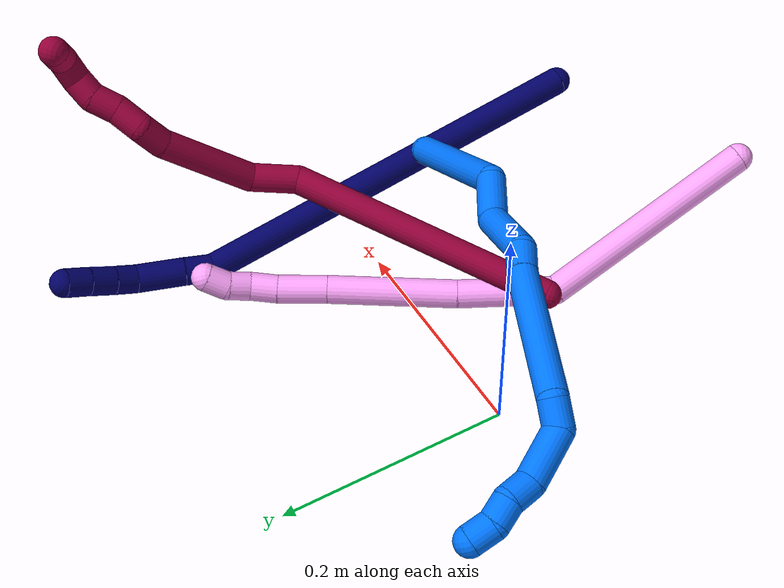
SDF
<sdf version="1.7">
 <world name="default">
  <model name="4">
   <static>0</static>
   <link name="4">
    <collision name="collision-cylinder-e_1_1_4">
     <pose>0.053542 0.018422 0.07918 -0.22859 0.582409 -0.068787</pose>
     <geometry><cylinder><radius>0.0125</radius><length>0.194684</length></cylinder></geometry>
     <surface>
      <friction><ode><mu>1.16</mu><mu2>1.16</mu2><slip1>0</slip1><slip2>0</slip2></ode></friction>
      <contact><ode><kp>1e+06</kp><kd>1</kd><max_vel>0</max_vel><min_depth>0.001</min_depth></ode></contact>
     </surface>
    </collision>
    <visual name="visual-cylinder-e_1_1_4">
     <pose>0.053542 0.018422 0.07918 -0.22859 0.582409 -0.068787</pose>
     <geometry><cylinder><radius>0.0125</radius><length>0.194684</length></cylinder></geometry>
     <material><ambient>1 0.65098 0.996078 1</ambient></material>
    </visual>
    <collision name="collision-cylinder-e_2_4_5">
     <pose>0.109569 0.058107 0.19484 -0.527733 0.0588 -0.01589</pose>
     <geometry><cylinder><radius>0.0125</radius><length>0.084596</length></cylinder></geometry>
     <surface>
      <friction><ode><mu>1.16</mu><mu2>1.16</mu2><slip1>0</slip1><slip2>0</slip2></ode></friction>
      <contact><ode><kp>1e+06</kp><kd>1</kd><max_vel>0</max_vel><min_depth>0.001</min_depth></ode></contact>
     </surface>
    </collision>
    <visual name="visual-cylinder-e_2_4_5">
     <pose>0.109569 0.058107 0.19484 -0.527733 0.0588 -0.01589</pose>
     <geometry><cylinder><radius>0.0125</radius><length>0.084596</length></cylinder></geometry>
     <material><ambient>1 0.65098 0.996078 1</ambient></material>
    </visual>
    <collision name="collision-cylinder-e_3_5_6">
     <pose>0.111279 0.108352 0.279576 -0.540843 -0.013794 0.003824</pose>
     <geometry><cylinder><radius>0.0125</radius><length>0.112591</length></cylinder></geometry>
     <surface>
      <friction><ode><mu>1.16</mu><mu2>1.16</mu2><slip1>0</slip1><slip2>0</slip2></ode></friction>
      <contact><ode><kp>1e+06</kp><kd>1</kd><max_vel>0</max_vel><min_depth>0.001</min_depth></ode></contact>
     </surface>
    </collision>
    <visual name="visual-cylinder-e_3_5_6">
     <pose>0.111279 0.108352 0.279576 -0.540843 -0.013794 0.003824</pose>
     <geometry><cylinder><radius>0.0125</radius><length>0.112591</length></cylinder></geometry>
     <material><ambient>1 0.65098 0.996078 1</ambient></material>
    </visual>
    <collision name="collision-cylinder-e_4_6_7">
     <pose>0.111001 0.148695 0.346252 -0.552694 0.02303 -0.006532</pose>
     <geometry><cylinder><radius>0.0125</radius><length>0.043296</length></cylinder></geometry>
     <surface>
      <friction><ode><mu>1.16</mu><mu2>1.16</mu2><slip1>0</slip1><slip2>0</slip2></ode></friction>
      <contact><ode><kp>1e+06</kp><kd>1</kd><max_vel>0</max_vel><min_depth>0.001</min_depth></ode></contact>
     </surface>
    </collision>
    <visual name="visual-cylinder-e_4_6_7">
     <pose>0.111001 0.148695 0.346252 -0.552694 0.02303 -0.006532</pose>
     <geometry><cylinder><radius>0.0125</radius><length>0.043296</length></cylinder></geometry>
     <material><ambient>1 0.65098 0.996078 1</ambient></material>
    </visual>
    <collision name="collision-cylinder-e_5_7_8">
     <pose>0.110812 0.167175 0.374663 -0.61905 -0.055912 0.017885</pose>
     <geometry><cylinder><radius>0.0125</radius><length>0.024574</length></cylinder></geometry>
     <surface>
      <friction><ode><mu>1.16</mu><mu2>1.16</mu2><slip1>0</slip1><slip2>0</slip2></ode></friction>
      <contact><ode><kp>1e+06</kp><kd>1</kd><max_vel>0</max_vel><min_depth>0.001</min_depth></ode></contact>
     </surface>
    </collision>
    <visual name="visual-cylinder-e_5_7_8">
     <pose>0.110812 0.167175 0.374663 -0.61905 -0.055912 0.017885</pose>
     <geometry><cylinder><radius>0.0125</radius><length>0.024574</length></cylinder></geometry>
     <material><ambient>1 0.65098 0.996078 1</ambient></material>
    </visual>
    <collision name="collision-cylinder-e_6_8_9">
     <pose>0.111597 0.181826 0.391085 -0.864139 0.147482 -0.068105</pose>
     <geometry><cylinder><radius>0.0125</radius><length>0.020025</length></cylinder></geometry>
     <surface>
      <friction><ode><mu>1.16</mu><mu2>1.16</mu2><slip1>0</slip1><slip2>0</slip2></ode></friction>
      <contact><ode><kp>1e+06</kp><kd>1</kd><max_vel>0</max_vel><min_depth>0.001</min_depth></ode></contact>
     </surface>
    </collision>
    <visual name="visual-cylinder-e_6_8_9">
     <pose>0.111597 0.181826 0.391085 -0.864139 0.147482 -0.068105</pose>
     <geometry><cylinder><radius>0.0125</radius><length>0.020025</length></cylinder></geometry>
     <material><ambient>1 0.65098 0.996078 1</ambient></material>
    </visual>
    <collision name="collision-cylinder-e_7_9_2">
     <pose>0.111142 0.197655 0.402974 -0.988866 -0.191575 0.103502</pose>
     <geometry><cylinder><radius>0.0125</radius><length>0.020234</length></cylinder></geometry>
     <surface>
      <friction><ode><mu>1.16</mu><mu2>1.16</mu2><slip1>0</slip1><slip2>0</slip2></ode></friction>
      <contact><ode><kp>1e+06</kp><kd>1</kd><max_vel>0</max_vel><min_depth>0.001</min_depth></ode></contact>
     </surface>
    </collision>
    <visual name="visual-cylinder-e_7_9_2">
     <pose>0.111142 0.197655 0.402974 -0.988866 -0.191575 0.103502</pose>
     <geometry><cylinder><radius>0.0125</radius><length>0.020234</length></cylinder></geometry>
     <material><ambient>1 0.65098 0.996078 1</ambient></material>
    </visual>
    <collision name="collision-sphere-2">
     <pose>0.109216 0.205952 0.408433 0 -0 0</pose>
     <geometry><sphere><radius>0.0125</radius></sphere></geometry>
     <surface>
      <friction><ode><mu>1.16</mu><mu2>1.16</mu2><slip1>0</slip1><slip2>0</slip2></ode></friction>
      <contact><ode><kp>1e+06</kp><kd>1</kd><max_vel>0</max_vel><min_depth>0.001</min_depth></ode></contact>
     </surface>
    </collision>
    <visual name="visual-sphere-2">
     <pose>0.109216 0.205952 0.408433 0 -0 0</pose>
     <geometry><sphere><radius>0.0125</radius></sphere></geometry>
     <material><ambient>1 0.65098 0.996078 1</ambient></material>
    </visual>
    <collision name="collision-sphere-9">
     <pose>0.113069 0.189358 0.397515 0 -0 0</pose>
     <geometry><sphere><radius>0.0125</radius></sphere></geometry>
     <surface>
      <friction><ode><mu>1.16</mu><mu2>1.16</mu2><slip1>0</slip1><slip2>0</slip2></ode></friction>
      <contact><ode><kp>1e+06</kp><kd>1</kd><max_vel>0</max_vel><min_depth>0.001</min_depth></ode></contact>
     </surface>
    </collision>
    <visual name="visual-sphere-9">
     <pose>0.113069 0.189358 0.397515 0 -0 0</pose>
     <geometry><sphere><radius>0.0125</radius></sphere></geometry>
     <material><ambient>1 0.65098 0.996078 1</ambient></material>
    </visual>
    <collision name="collision-sphere-4">
     <pose>0.107084 0.036843 0.158359 0 -0 0</pose>
     <geometry><sphere><radius>0.0125</radius></sphere></geometry>
     <surface>
      <friction><ode><mu>1.16</mu><mu2>1.16</mu2><slip1>0</slip1><slip2>0</slip2></ode></friction>
      <contact><ode><kp>1e+06</kp><kd>1</kd><max_vel>0</max_vel><min_depth>0.001</min_depth></ode></contact>
     </surface>
    </collision>
    <visual name="visual-sphere-4">
     <pose>0.107084 0.036843 0.158359 0 -0 0</pose>
     <geometry><sphere><radius>0.0125</radius></sphere></geometry>
     <material><ambient>1 0.65098 0.996078 1</ambient></material>
    </visual>
    <collision name="collision-sphere-1">
     <geometry><sphere><radius>0.0125</radius></sphere></geometry>
     <surface>
      <friction><ode><mu>1.16</mu><mu2>1.16</mu2><slip1>0</slip1><slip2>0</slip2></ode></friction>
      <contact><ode><kp>1e+06</kp><kd>1</kd><max_vel>0</max_vel><min_depth>0.001</min_depth></ode></contact>
     </surface>
    </collision>
    <visual name="visual-sphere-1">
     <geometry><sphere><radius>0.0125</radius></sphere></geometry>
     <material><ambient>1 0.65098 0.996078 1</ambient></material>
    </visual>
    <collision name="collision-sphere-8">
     <pose>0.110126 0.174294 0.384654 0 -0 0</pose>
     <geometry><sphere><radius>0.0125</radius></sphere></geometry>
     <surface>
      <friction><ode><mu>1.16</mu><mu2>1.16</mu2><slip1>0</slip1><slip2>0</slip2></ode></friction>
      <contact><ode><kp>1e+06</kp><kd>1</kd><max_vel>0</max_vel><min_depth>0.001</min_depth></ode></contact>
     </surface>
    </collision>
    <visual name="visual-sphere-8">
     <pose>0.110126 0.174294 0.384654 0 -0 0</pose>
     <geometry><sphere><radius>0.0125</radius></sphere></geometry>
     <material><ambient>1 0.65098 0.996078 1</ambient></material>
    </visual>
    <collision name="collision-sphere-5">
     <pose>0.112055 0.079371 0.23132 0 -0 0</pose>
     <geometry><sphere><radius>0.0125</radius></sphere></geometry>
     <surface>
      <friction><ode><mu>1.16</mu><mu2>1.16</mu2><slip1>0</slip1><slip2>0</slip2></ode></friction>
      <contact><ode><kp>1e+06</kp><kd>1</kd><max_vel>0</max_vel><min_depth>0.001</min_depth></ode></contact>
     </surface>
    </collision>
    <visual name="visual-sphere-5">
     <pose>0.112055 0.079371 0.23132 0 -0 0</pose>
     <geometry><sphere><radius>0.0125</radius></sphere></geometry>
     <material><ambient>1 0.65098 0.996078 1</ambient></material>
    </visual>
    <collision name="collision-sphere-6">
     <pose>0.110502 0.137333 0.327832 0 -0 0</pose>
     <geometry><sphere><radius>0.0125</radius></sphere></geometry>
     <surface>
      <friction><ode><mu>1.16</mu><mu2>1.16</mu2><slip1>0</slip1><slip2>0</slip2></ode></friction>
      <contact><ode><kp>1e+06</kp><kd>1</kd><max_vel>0</max_vel><min_depth>0.001</min_depth></ode></contact>
     </surface>
    </collision>
    <visual name="visual-sphere-6">
     <pose>0.110502 0.137333 0.327832 0 -0 0</pose>
     <geometry><sphere><radius>0.0125</radius></sphere></geometry>
     <material><ambient>1 0.65098 0.996078 1</ambient></material>
    </visual>
    <collision name="collision-sphere-7">
     <pose>0.111499 0.160057 0.364672 0 -0 0</pose>
     <geometry><sphere><radius>0.0125</radius></sphere></geometry>
     <surface>
      <friction><ode><mu>1.16</mu><mu2>1.16</mu2><slip1>0</slip1><slip2>0</slip2></ode></friction>
      <contact><ode><kp>1e+06</kp><kd>1</kd><max_vel>0</max_vel><min_depth>0.001</min_depth></ode></contact>
     </surface>
    </collision>
    <visual name="visual-sphere-7">
     <pose>0.111499 0.160057 0.364672 0 -0 0</pose>
     <geometry><sphere><radius>0.0125</radius></sphere></geometry>
     <material><ambient>1 0.65098 0.996078 1</ambient></material>
    </visual>
    <inertial>
     <pose>0.088469 0.077776 0.207118 0 -0 0</pose>
     <mass>0.5</mass>
     <inertia>
      <ixx>0.000682</ixx>
      <ixy>0</ixy>
      <ixz>0</ixz>
      <iyy>0.000753</iyy>
      <iyz>0</iyz>
      <izz>-0.000528</izz>
     </inertia>
    </inertial>
   </link>
   <pose>0.070977 -0.284398 0.097431 2.11252 0.342726 2.5815</pose>
  </model>
  <model name="7">
   <static>0</static>
   <link name="7">
    <collision name="collision-cylinder-e_1_1_4">
     <pose>-0.101516 0.083283 -0.128021 -2.56484 -0.586632 1.58877</pose>
     <geometry><cylinder><radius>0.0125</radius><length>0.366775</length></cylinder></geometry>
     <surface>
      <friction><ode><mu>1.16</mu><mu2>1.16</mu2><slip1>0</slip1><slip2>0</slip2></ode></friction>
      <contact><ode><kp>1e+06</kp><kd>1</kd><max_vel>0</max_vel><min_depth>0.001</min_depth></ode></contact>
     </surface>
    </collision>
    <visual name="visual-cylinder-e_1_1_4">
     <pose>-0.101516 0.083283 -0.128021 -2.56484 -0.586632 1.58877</pose>
     <geometry><cylinder><radius>0.0125</radius><length>0.366775</length></cylinder></geometry>
     <material><ambient>0.003922 0 0.403922 1</ambient></material>
    </visual>
    <collision name="collision-cylinder-e_2_4_5">
     <pose>-0.207642 0.175783 -0.262934 -2.21279 -0.381051 0.735023</pose>
     <geometry><cylinder><radius>0.0125</radius><length>0.024794</length></cylinder></geometry>
     <surface>
      <friction><ode><mu>1.16</mu><mu2>1.16</mu2><slip1>0</slip1><slip2>0</slip2></ode></friction>
      <contact><ode><kp>1e+06</kp><kd>1</kd><max_vel>0</max_vel><min_depth>0.001</min_depth></ode></contact>
     </surface>
    </collision>
    <visual name="visual-cylinder-e_2_4_5">
     <pose>-0.207642 0.175783 -0.262934 -2.21279 -0.381051 0.735023</pose>
     <geometry><cylinder><radius>0.0125</radius><length>0.024794</length></cylinder></geometry>
     <material><ambient>0.003922 0 0.403922 1</ambient></material>
    </visual>
    <collision name="collision-cylinder-e_3_5_6">
     <pose>-0.219813 0.200374 -0.282636 -2.26552 -0.361207 0.743432</pose>
     <geometry><cylinder><radius>0.0125</radius><length>0.042786</length></cylinder></geometry>
     <surface>
      <friction><ode><mu>1.16</mu><mu2>1.16</mu2><slip1>0</slip1><slip2>0</slip2></ode></friction>
      <contact><ode><kp>1e+06</kp><kd>1</kd><max_vel>0</max_vel><min_depth>0.001</min_depth></ode></contact>
     </surface>
    </collision>
    <visual name="visual-cylinder-e_3_5_6">
     <pose>-0.219813 0.200374 -0.282636 -2.26552 -0.361207 0.743432</pose>
     <geometry><cylinder><radius>0.0125</radius><length>0.042786</length></cylinder></geometry>
     <material><ambient>0.003922 0 0.403922 1</ambient></material>
    </visual>
    <collision name="collision-cylinder-e_4_6_7">
     <pose>-0.233095 0.223919 -0.298612 -1.94031 -0.578484 0.819587</pose>
     <geometry><cylinder><radius>0.0125</radius><length>0.020928</length></cylinder></geometry>
     <surface>
      <friction><ode><mu>1.16</mu><mu2>1.16</mu2><slip1>0</slip1><slip2>0</slip2></ode></friction>
      <contact><ode><kp>1e+06</kp><kd>1</kd><max_vel>0</max_vel><min_depth>0.001</min_depth></ode></contact>
     </surface>
    </collision>
    <visual name="visual-cylinder-e_4_6_7">
     <pose>-0.233095 0.223919 -0.298612 -1.94031 -0.578484 0.819587</pose>
     <geometry><cylinder><radius>0.0125</radius><length>0.020928</length></cylinder></geometry>
     <material><ambient>0.003922 0 0.403922 1</ambient></material>
    </visual>
    <collision name="collision-cylinder-e_5_7_8">
     <pose>-0.244981 0.241244 -0.304975 -1.90692 -0.566263 0.777931</pose>
     <geometry><cylinder><radius>0.0125</radius><length>0.022983</length></cylinder></geometry>
     <surface>
      <friction><ode><mu>1.16</mu><mu2>1.16</mu2><slip1>0</slip1><slip2>0</slip2></ode></friction>
      <contact><ode><kp>1e+06</kp><kd>1</kd><max_vel>0</max_vel><min_depth>0.001</min_depth></ode></contact>
     </surface>
    </collision>
    <visual name="visual-cylinder-e_5_7_8">
     <pose>-0.244981 0.241244 -0.304975 -1.90692 -0.566263 0.777931</pose>
     <geometry><cylinder><radius>0.0125</radius><length>0.022983</length></cylinder></geometry>
     <material><ambient>0.003922 0 0.403922 1</ambient></material>
    </visual>
    <collision name="collision-cylinder-e_6_8_2">
     <pose>-0.257081 0.258893 -0.311445 -1.93847 -0.577799 0.817227</pose>
     <geometry><cylinder><radius>0.0125</radius><length>0.021733</length></cylinder></geometry>
     <surface>
      <friction><ode><mu>1.16</mu><mu2>1.16</mu2><slip1>0</slip1><slip2>0</slip2></ode></friction>
      <contact><ode><kp>1e+06</kp><kd>1</kd><max_vel>0</max_vel><min_depth>0.001</min_depth></ode></contact>
     </surface>
    </collision>
    <visual name="visual-cylinder-e_6_8_2">
     <pose>-0.257081 0.258893 -0.311445 -1.93847 -0.577799 0.817227</pose>
     <geometry><cylinder><radius>0.0125</radius><length>0.021733</length></cylinder></geometry>
     <material><ambient>0.003922 0 0.403922 1</ambient></material>
    </visual>
    <collision name="collision-sphere-2">
     <pose>-0.263016 0.267387 -0.314717 0 -0 0</pose>
     <geometry><sphere><radius>0.0125</radius></sphere></geometry>
     <surface>
      <friction><ode><mu>1.16</mu><mu2>1.16</mu2><slip1>0</slip1><slip2>0</slip2></ode></friction>
      <contact><ode><kp>1e+06</kp><kd>1</kd><max_vel>0</max_vel><min_depth>0.001</min_depth></ode></contact>
     </surface>
    </collision>
    <visual name="visual-sphere-2">
     <pose>-0.263016 0.267387 -0.314717 0 -0 0</pose>
     <geometry><sphere><radius>0.0125</radius></sphere></geometry>
     <material><ambient>0.003922 0 0.403922 1</ambient></material>
    </visual>
    <collision name="collision-sphere-4">
     <pose>-0.203032 0.166566 -0.256043 0 -0 0</pose>
     <geometry><sphere><radius>0.0125</radius></sphere></geometry>
     <surface>
      <friction><ode><mu>1.16</mu><mu2>1.16</mu2><slip1>0</slip1><slip2>0</slip2></ode></friction>
      <contact><ode><kp>1e+06</kp><kd>1</kd><max_vel>0</max_vel><min_depth>0.001</min_depth></ode></contact>
     </surface>
    </collision>
    <visual name="visual-sphere-4">
     <pose>-0.203032 0.166566 -0.256043 0 -0 0</pose>
     <geometry><sphere><radius>0.0125</radius></sphere></geometry>
     <material><ambient>0.003922 0 0.403922 1</ambient></material>
    </visual>
    <collision name="collision-sphere-1">
     <geometry><sphere><radius>0.0125</radius></sphere></geometry>
     <surface>
      <friction><ode><mu>1.16</mu><mu2>1.16</mu2><slip1>0</slip1><slip2>0</slip2></ode></friction>
      <contact><ode><kp>1e+06</kp><kd>1</kd><max_vel>0</max_vel><min_depth>0.001</min_depth></ode></contact>
     </surface>
    </collision>
    <visual name="visual-sphere-1">
     <geometry><sphere><radius>0.0125</radius></sphere></geometry>
     <material><ambient>0.003922 0 0.403922 1</ambient></material>
    </visual>
    <collision name="collision-sphere-8">
     <pose>-0.251146 0.250399 -0.308174 0 -0 0</pose>
     <geometry><sphere><radius>0.0125</radius></sphere></geometry>
     <surface>
      <friction><ode><mu>1.16</mu><mu2>1.16</mu2><slip1>0</slip1><slip2>0</slip2></ode></friction>
      <contact><ode><kp>1e+06</kp><kd>1</kd><max_vel>0</max_vel><min_depth>0.001</min_depth></ode></contact>
     </surface>
    </collision>
    <visual name="visual-sphere-8">
     <pose>-0.251146 0.250399 -0.308174 0 -0 0</pose>
     <geometry><sphere><radius>0.0125</radius></sphere></geometry>
     <material><ambient>0.003922 0 0.403922 1</ambient></material>
    </visual>
    <collision name="collision-sphere-5">
     <pose>-0.212253 0.185 -0.269824 0 -0 0</pose>
     <geometry><sphere><radius>0.0125</radius></sphere></geometry>
     <surface>
      <friction><ode><mu>1.16</mu><mu2>1.16</mu2><slip1>0</slip1><slip2>0</slip2></ode></friction>
      <contact><ode><kp>1e+06</kp><kd>1</kd><max_vel>0</max_vel><min_depth>0.001</min_depth></ode></contact>
     </surface>
    </collision>
    <visual name="visual-sphere-5">
     <pose>-0.212253 0.185 -0.269824 0 -0 0</pose>
     <geometry><sphere><radius>0.0125</radius></sphere></geometry>
     <material><ambient>0.003922 0 0.403922 1</ambient></material>
    </visual>
    <collision name="collision-sphere-6">
     <pose>-0.227373 0.215748 -0.295448 0 -0 0</pose>
     <geometry><sphere><radius>0.0125</radius></sphere></geometry>
     <surface>
      <friction><ode><mu>1.16</mu><mu2>1.16</mu2><slip1>0</slip1><slip2>0</slip2></ode></friction>
      <contact><ode><kp>1e+06</kp><kd>1</kd><max_vel>0</max_vel><min_depth>0.001</min_depth></ode></contact>
     </surface>
    </collision>
    <visual name="visual-sphere-6">
     <pose>-0.227373 0.215748 -0.295448 0 -0 0</pose>
     <geometry><sphere><radius>0.0125</radius></sphere></geometry>
     <material><ambient>0.003922 0 0.403922 1</ambient></material>
    </visual>
    <collision name="collision-sphere-7">
     <pose>-0.238816 0.232089 -0.301776 0 -0 0</pose>
     <geometry><sphere><radius>0.0125</radius></sphere></geometry>
     <surface>
      <friction><ode><mu>1.16</mu><mu2>1.16</mu2><slip1>0</slip1><slip2>0</slip2></ode></friction>
      <contact><ode><kp>1e+06</kp><kd>1</kd><max_vel>0</max_vel><min_depth>0.001</min_depth></ode></contact>
     </surface>
    </collision>
    <visual name="visual-sphere-7">
     <pose>-0.238816 0.232089 -0.301776 0 -0 0</pose>
     <geometry><sphere><radius>0.0125</radius></sphere></geometry>
     <material><ambient>0.003922 0 0.403922 1</ambient></material>
    </visual>
    <inertial>
     <pose>-0.135765 0.11867 -0.171189 0 -0 0</pose>
     <mass>0.5</mass>
     <inertia>
      <ixx>0.003373</ixx>
      <ixy>0</ixy>
      <ixz>0</ixz>
      <iyy>0.004771</iyy>
      <iyz>0</iyz>
      <izz>0.000381</izz>
     </inertia>
    </inertial>
   </link>
   <pose>0.261754 -0.227028 0.069829 0.693847 0.157472 -0.622538</pose>
  </model>
  <model name="8">
   <static>0</static>
   <link name="8">
    <collision name="collision-cylinder-e_1_1_4">
     <pose>-0.006393 0.015684 0.11797 -0.132172 -0.05367 0.003553</pose>
     <geometry><cylinder><radius>0.0125</radius><length>0.238359</length></cylinder></geometry>
     <surface>
      <friction><ode><mu>1.16</mu><mu2>1.16</mu2><slip1>0</slip1><slip2>0</slip2></ode></friction>
      <contact><ode><kp>1e+06</kp><kd>1</kd><max_vel>0</max_vel><min_depth>0.001</min_depth></ode></contact>
     </surface>
    </collision>
    <visual name="visual-cylinder-e_1_1_4">
     <pose>-0.006393 0.015684 0.11797 -0.132172 -0.05367 0.003553</pose>
     <geometry><cylinder><radius>0.0125</radius><length>0.238359</length></cylinder></geometry>
     <material><ambient>0.584314 0 0.227451 1</ambient></material>
    </visual>
    <collision name="collision-cylinder-e_2_4_5">
     <pose>-0.004142 0.034367 0.254579 -0.159532 0.429427 -0.03486</pose>
     <geometry><cylinder><radius>0.0125</radius><length>0.041528</length></cylinder></geometry>
     <surface>
      <friction><ode><mu>1.16</mu><mu2>1.16</mu2><slip1>0</slip1><slip2>0</slip2></ode></friction>
      <contact><ode><kp>1e+06</kp><kd>1</kd><max_vel>0</max_vel><min_depth>0.001</min_depth></ode></contact>
     </surface>
    </collision>
    <visual name="visual-cylinder-e_2_4_5">
     <pose>-0.004142 0.034367 0.254579 -0.159532 0.429427 -0.03486</pose>
     <geometry><cylinder><radius>0.0125</radius><length>0.041528</length></cylinder></geometry>
     <material><ambient>0.584314 0 0.227451 1</ambient></material>
    </visual>
    <collision name="collision-cylinder-e_3_5_6">
     <pose>0.020723 0.064457 0.304015 -0.721468 0.376569 -0.143513</pose>
     <geometry><cylinder><radius>0.0125</radius><length>0.088215</length></cylinder></geometry>
     <surface>
      <friction><ode><mu>1.16</mu><mu2>1.16</mu2><slip1>0</slip1><slip2>0</slip2></ode></friction>
      <contact><ode><kp>1e+06</kp><kd>1</kd><max_vel>0</max_vel><min_depth>0.001</min_depth></ode></contact>
     </surface>
    </collision>
    <visual name="visual-cylinder-e_3_5_6">
     <pose>0.020723 0.064457 0.304015 -0.721468 0.376569 -0.143513</pose>
     <geometry><cylinder><radius>0.0125</radius><length>0.088215</length></cylinder></geometry>
     <material><ambient>0.584314 0 0.227451 1</ambient></material>
    </visual>
    <collision name="collision-cylinder-e_4_6_7">
     <pose>0.039135 0.100797 0.34244 -0.881171 0.180814 -0.085434</pose>
     <geometry><cylinder><radius>0.0125</radius><length>0.024375</length></cylinder></geometry>
     <surface>
      <friction><ode><mu>1.16</mu><mu2>1.16</mu2><slip1>0</slip1><slip2>0</slip2></ode></friction>
      <contact><ode><kp>1e+06</kp><kd>1</kd><max_vel>0</max_vel><min_depth>0.001</min_depth></ode></contact>
     </surface>
    </collision>
    <visual name="visual-cylinder-e_4_6_7">
     <pose>0.039135 0.100797 0.34244 -0.881171 0.180814 -0.085434</pose>
     <geometry><cylinder><radius>0.0125</radius><length>0.024375</length></cylinder></geometry>
     <material><ambient>0.584314 0 0.227451 1</ambient></material>
    </visual>
    <collision name="collision-cylinder-e_5_7_8">
     <pose>0.039871 0.115178 0.360665 -0.450927 -0.123002 0.028246</pose>
     <geometry><cylinder><radius>0.0125</radius><length>0.023728</length></cylinder></geometry>
     <surface>
      <friction><ode><mu>1.16</mu><mu2>1.16</mu2><slip1>0</slip1><slip2>0</slip2></ode></friction>
      <contact><ode><kp>1e+06</kp><kd>1</kd><max_vel>0</max_vel><min_depth>0.001</min_depth></ode></contact>
     </surface>
    </collision>
    <visual name="visual-cylinder-e_5_7_8">
     <pose>0.039871 0.115178 0.360665 -0.450927 -0.123002 0.028246</pose>
     <geometry><cylinder><radius>0.0125</radius><length>0.023728</length></cylinder></geometry>
     <material><ambient>0.584314 0 0.227451 1</ambient></material>
    </visual>
    <collision name="collision-cylinder-e_6_8_9">
     <pose>0.039533 0.124681 0.3816 -0.400059 0.099223 -0.020132</pose>
     <geometry><cylinder><radius>0.0125</radius><length>0.022558</length></cylinder></geometry>
     <surface>
      <friction><ode><mu>1.16</mu><mu2>1.16</mu2><slip1>0</slip1><slip2>0</slip2></ode></friction>
      <contact><ode><kp>1e+06</kp><kd>1</kd><max_vel>0</max_vel><min_depth>0.001</min_depth></ode></contact>
     </surface>
    </collision>
    <visual name="visual-cylinder-e_6_8_9">
     <pose>0.039533 0.124681 0.3816 -0.400059 0.099223 -0.020132</pose>
     <geometry><cylinder><radius>0.0125</radius><length>0.022558</length></cylinder></geometry>
     <material><ambient>0.584314 0 0.227451 1</ambient></material>
    </visual>
    <collision name="collision-cylinder-e_7_9_10">
     <pose>0.038054 0.134441 0.399966 -0.591193 -0.262219 0.080268</pose>
     <geometry><cylinder><radius>0.0125</radius><length>0.020024</length></cylinder></geometry>
     <surface>
      <friction><ode><mu>1.16</mu><mu2>1.16</mu2><slip1>0</slip1><slip2>0</slip2></ode></friction>
      <contact><ode><kp>1e+06</kp><kd>1</kd><max_vel>0</max_vel><min_depth>0.001</min_depth></ode></contact>
     </surface>
    </collision>
    <visual name="visual-cylinder-e_7_9_10">
     <pose>0.038054 0.134441 0.399966 -0.591193 -0.262219 0.080268</pose>
     <geometry><cylinder><radius>0.0125</radius><length>0.020024</length></cylinder></geometry>
     <material><ambient>0.584314 0 0.227451 1</ambient></material>
    </visual>
    <collision name="collision-cylinder-e_8_10_11">
     <pose>0.035372 0.149411 0.412459 -1.13469 -0.008247 0.005255</pose>
     <geometry><cylinder><radius>0.0125</radius><length>0.021139</length></cylinder></geometry>
     <surface>
      <friction><ode><mu>1.16</mu><mu2>1.16</mu2><slip1>0</slip1><slip2>0</slip2></ode></friction>
      <contact><ode><kp>1e+06</kp><kd>1</kd><max_vel>0</max_vel><min_depth>0.001</min_depth></ode></contact>
     </surface>
    </collision>
    <visual name="visual-cylinder-e_8_10_11">
     <pose>0.035372 0.149411 0.412459 -1.13469 -0.008247 0.005255</pose>
     <geometry><cylinder><radius>0.0125</radius><length>0.021139</length></cylinder></geometry>
     <material><ambient>0.584314 0 0.227451 1</ambient></material>
    </visual>
    <collision name="collision-cylinder-e_9_11_2">
     <pose>0.039499 0.168096 0.416672 -1.59848 0.433321 -0.445095</pose>
     <geometry><cylinder><radius>0.0125</radius><length>0.020073</length></cylinder></geometry>
     <surface>
      <friction><ode><mu>1.16</mu><mu2>1.16</mu2><slip1>0</slip1><slip2>0</slip2></ode></friction>
      <contact><ode><kp>1e+06</kp><kd>1</kd><max_vel>0</max_vel><min_depth>0.001</min_depth></ode></contact>
     </surface>
    </collision>
    <visual name="visual-cylinder-e_9_11_2">
     <pose>0.039499 0.168096 0.416672 -1.59848 0.433321 -0.445095</pose>
     <geometry><cylinder><radius>0.0125</radius><length>0.020073</length></cylinder></geometry>
     <material><ambient>0.584314 0 0.227451 1</ambient></material>
    </visual>
    <collision name="collision-sphere-2">
     <pose>0.043713 0.177202 0.41642 0 -0 0</pose>
     <geometry><sphere><radius>0.0125</radius></sphere></geometry>
     <surface>
      <friction><ode><mu>1.16</mu><mu2>1.16</mu2><slip1>0</slip1><slip2>0</slip2></ode></friction>
      <contact><ode><kp>1e+06</kp><kd>1</kd><max_vel>0</max_vel><min_depth>0.001</min_depth></ode></contact>
     </surface>
    </collision>
    <visual name="visual-sphere-2">
     <pose>0.043713 0.177202 0.41642 0 -0 0</pose>
     <geometry><sphere><radius>0.0125</radius></sphere></geometry>
     <material><ambient>0.584314 0 0.227451 1</ambient></material>
    </visual>
    <collision name="collision-sphere-11">
     <pose>0.035285 0.158991 0.416924 0 -0 0</pose>
     <geometry><sphere><radius>0.0125</radius></sphere></geometry>
     <surface>
      <friction><ode><mu>1.16</mu><mu2>1.16</mu2><slip1>0</slip1><slip2>0</slip2></ode></friction>
      <contact><ode><kp>1e+06</kp><kd>1</kd><max_vel>0</max_vel><min_depth>0.001</min_depth></ode></contact>
     </surface>
    </collision>
    <visual name="visual-sphere-11">
     <pose>0.035285 0.158991 0.416924 0 -0 0</pose>
     <geometry><sphere><radius>0.0125</radius></sphere></geometry>
     <material><ambient>0.584314 0 0.227451 1</ambient></material>
    </visual>
    <collision name="collision-sphere-10">
     <pose>0.035459 0.139831 0.407995 0 -0 0</pose>
     <geometry><sphere><radius>0.0125</radius></sphere></geometry>
     <surface>
      <friction><ode><mu>1.16</mu><mu2>1.16</mu2><slip1>0</slip1><slip2>0</slip2></ode></friction>
      <contact><ode><kp>1e+06</kp><kd>1</kd><max_vel>0</max_vel><min_depth>0.001</min_depth></ode></contact>
     </surface>
    </collision>
    <visual name="visual-sphere-10">
     <pose>0.035459 0.139831 0.407995 0 -0 0</pose>
     <geometry><sphere><radius>0.0125</radius></sphere></geometry>
     <material><ambient>0.584314 0 0.227451 1</ambient></material>
    </visual>
    <collision name="collision-sphere-9">
     <pose>0.04065 0.129052 0.391938 0 -0 0</pose>
     <geometry><sphere><radius>0.0125</radius></sphere></geometry>
     <surface>
      <friction><ode><mu>1.16</mu><mu2>1.16</mu2><slip1>0</slip1><slip2>0</slip2></ode></friction>
      <contact><ode><kp>1e+06</kp><kd>1</kd><max_vel>0</max_vel><min_depth>0.001</min_depth></ode></contact>
     </surface>
    </collision>
    <visual name="visual-sphere-9">
     <pose>0.04065 0.129052 0.391938 0 -0 0</pose>
     <geometry><sphere><radius>0.0125</radius></sphere></geometry>
     <material><ambient>0.584314 0 0.227451 1</ambient></material>
    </visual>
    <collision name="collision-sphere-4">
     <pose>-0.012787 0.031368 0.23594 0 -0 0</pose>
     <geometry><sphere><radius>0.0125</radius></sphere></geometry>
     <surface>
      <friction><ode><mu>1.16</mu><mu2>1.16</mu2><slip1>0</slip1><slip2>0</slip2></ode></friction>
      <contact><ode><kp>1e+06</kp><kd>1</kd><max_vel>0</max_vel><min_depth>0.001</min_depth></ode></contact>
     </surface>
    </collision>
    <visual name="visual-sphere-4">
     <pose>-0.012787 0.031368 0.23594 0 -0 0</pose>
     <geometry><sphere><radius>0.0125</radius></sphere></geometry>
     <material><ambient>0.584314 0 0.227451 1</ambient></material>
    </visual>
    <collision name="collision-sphere-1">
     <geometry><sphere><radius>0.0125</radius></sphere></geometry>
     <surface>
      <friction><ode><mu>1.16</mu><mu2>1.16</mu2><slip1>0</slip1><slip2>0</slip2></ode></friction>
      <contact><ode><kp>1e+06</kp><kd>1</kd><max_vel>0</max_vel><min_depth>0.001</min_depth></ode></contact>
     </surface>
    </collision>
    <visual name="visual-sphere-1">
     <geometry><sphere><radius>0.0125</radius></sphere></geometry>
     <material><ambient>0.584314 0 0.227451 1</ambient></material>
    </visual>
    <collision name="collision-sphere-8">
     <pose>0.038415 0.120309 0.371263 0 -0 0</pose>
     <geometry><sphere><radius>0.0125</radius></sphere></geometry>
     <surface>
      <friction><ode><mu>1.16</mu><mu2>1.16</mu2><slip1>0</slip1><slip2>0</slip2></ode></friction>
      <contact><ode><kp>1e+06</kp><kd>1</kd><max_vel>0</max_vel><min_depth>0.001</min_depth></ode></contact>
     </surface>
    </collision>
    <visual name="visual-sphere-8">
     <pose>0.038415 0.120309 0.371263 0 -0 0</pose>
     <geometry><sphere><radius>0.0125</radius></sphere></geometry>
     <material><ambient>0.584314 0 0.227451 1</ambient></material>
    </visual>
    <collision name="collision-sphere-5">
     <pose>0.004503 0.037366 0.273218 0 -0 0</pose>
     <geometry><sphere><radius>0.0125</radius></sphere></geometry>
     <surface>
      <friction><ode><mu>1.16</mu><mu2>1.16</mu2><slip1>0</slip1><slip2>0</slip2></ode></friction>
      <contact><ode><kp>1e+06</kp><kd>1</kd><max_vel>0</max_vel><min_depth>0.001</min_depth></ode></contact>
     </surface>
    </collision>
    <visual name="visual-sphere-5">
     <pose>0.004503 0.037366 0.273218 0 -0 0</pose>
     <geometry><sphere><radius>0.0125</radius></sphere></geometry>
     <material><ambient>0.584314 0 0.227451 1</ambient></material>
    </visual>
    <collision name="collision-sphere-6">
     <pose>0.036943 0.091548 0.334812 0 -0 0</pose>
     <geometry><sphere><radius>0.0125</radius></sphere></geometry>
     <surface>
      <friction><ode><mu>1.16</mu><mu2>1.16</mu2><slip1>0</slip1><slip2>0</slip2></ode></friction>
      <contact><ode><kp>1e+06</kp><kd>1</kd><max_vel>0</max_vel><min_depth>0.001</min_depth></ode></contact>
     </surface>
    </collision>
    <visual name="visual-sphere-6">
     <pose>0.036943 0.091548 0.334812 0 -0 0</pose>
     <geometry><sphere><radius>0.0125</radius></sphere></geometry>
     <material><ambient>0.584314 0 0.227451 1</ambient></material>
    </visual>
    <collision name="collision-sphere-7">
     <pose>0.041327 0.110047 0.350068 0 -0 0</pose>
     <geometry><sphere><radius>0.0125</radius></sphere></geometry>
     <surface>
      <friction><ode><mu>1.16</mu><mu2>1.16</mu2><slip1>0</slip1><slip2>0</slip2></ode></friction>
      <contact><ode><kp>1e+06</kp><kd>1</kd><max_vel>0</max_vel><min_depth>0.001</min_depth></ode></contact>
     </surface>
    </collision>
    <visual name="visual-sphere-7">
     <pose>0.041327 0.110047 0.350068 0 -0 0</pose>
     <geometry><sphere><radius>0.0125</radius></sphere></geometry>
     <material><ambient>0.584314 0 0.227451 1</ambient></material>
    </visual>
    <inertial>
     <pose>0.010453 0.056158 0.23223 0 -0 0</pose>
     <mass>0.5</mass>
     <inertia>
      <ixx>0.001208</ixx>
      <ixy>0</ixy>
      <ixz>0</ixz>
      <iyy>0.001199</iyy>
      <iyz>0</iyz>
      <izz>-0.000127</izz>
     </inertia>
    </inertial>
   </link>
   <pose>0.068876 -0.090483 0.031413 1.52628 0.131977 2.22035</pose>
  </model>
  <model name="14">
   <static>0</static>
   <link name="14">
    <collision name="collision-cylinder-e_1_1_4">
     <pose>-0.056152 -0.023551 -0.017226 2.20232 -1.09157 -1.74938</pose>
     <geometry><cylinder><radius>0.0125</radius><length>0.126561</length></cylinder></geometry>
     <surface>
      <friction><ode><mu>1.16</mu><mu2>1.16</mu2><slip1>0</slip1><slip2>0</slip2></ode></friction>
      <contact><ode><kp>1e+06</kp><kd>1</kd><max_vel>0</max_vel><min_depth>0.001</min_depth></ode></contact>
     </surface>
    </collision>
    <visual name="visual-cylinder-e_1_1_4">
     <pose>-0.056152 -0.023551 -0.017226 2.20232 -1.09157 -1.74938</pose>
     <geometry><cylinder><radius>0.0125</radius><length>0.126561</length></cylinder></geometry>
     <material><ambient>0 0.462745 1 1</ambient></material>
    </visual>
    <collision name="collision-cylinder-e_2_4_5">
     <pose>-0.127962 -0.04269 -0.048936 -2.84599 -0.802202 2.46632</pose>
     <geometry><cylinder><radius>0.0125</radius><length>0.043562</length></cylinder></geometry>
     <surface>
      <friction><ode><mu>1.16</mu><mu2>1.16</mu2><slip1>0</slip1><slip2>0</slip2></ode></friction>
      <contact><ode><kp>1e+06</kp><kd>1</kd><max_vel>0</max_vel><min_depth>0.001</min_depth></ode></contact>
     </surface>
    </collision>
    <visual name="visual-cylinder-e_2_4_5">
     <pose>-0.127962 -0.04269 -0.048936 -2.84599 -0.802202 2.46632</pose>
     <geometry><cylinder><radius>0.0125</radius><length>0.043562</length></cylinder></geometry>
     <material><ambient>0 0.462745 1 1</ambient></material>
    </visual>
    <collision name="collision-cylinder-e_3_5_6">
     <pose>-0.168394 -0.045216 -0.075198 2.6094 -1.06662 -2.27655</pose>
     <geometry><cylinder><radius>0.0125</radius><length>0.05659</length></cylinder></geometry>
     <surface>
      <friction><ode><mu>1.16</mu><mu2>1.16</mu2><slip1>0</slip1><slip2>0</slip2></ode></friction>
      <contact><ode><kp>1e+06</kp><kd>1</kd><max_vel>0</max_vel><min_depth>0.001</min_depth></ode></contact>
     </surface>
    </collision>
    <visual name="visual-cylinder-e_3_5_6">
     <pose>-0.168394 -0.045216 -0.075198 2.6094 -1.06662 -2.27655</pose>
     <geometry><cylinder><radius>0.0125</radius><length>0.05659</length></cylinder></geometry>
     <material><ambient>0 0.462745 1 1</ambient></material>
    </visual>
    <collision name="collision-cylinder-e_4_6_7">
     <pose>-0.201976 -0.049629 -0.094801 -2.82974 -0.819828 2.44734</pose>
     <geometry><cylinder><radius>0.0125</radius><length>0.024094</length></cylinder></geometry>
     <surface>
      <friction><ode><mu>1.16</mu><mu2>1.16</mu2><slip1>0</slip1><slip2>0</slip2></ode></friction>
      <contact><ode><kp>1e+06</kp><kd>1</kd><max_vel>0</max_vel><min_depth>0.001</min_depth></ode></contact>
     </surface>
    </collision>
    <visual name="visual-cylinder-e_4_6_7">
     <pose>-0.201976 -0.049629 -0.094801 -2.82974 -0.819828 2.44734</pose>
     <geometry><cylinder><radius>0.0125</radius><length>0.024094</length></cylinder></geometry>
     <material><ambient>0 0.462745 1 1</ambient></material>
    </visual>
    <collision name="collision-cylinder-e_5_7_8">
     <pose>-0.252732 -0.043147 -0.143714 -3.0455 -0.793442 2.91305</pose>
     <geometry><cylinder><radius>0.0125</radius><length>0.117709</length></cylinder></geometry>
     <surface>
      <friction><ode><mu>1.16</mu><mu2>1.16</mu2><slip1>0</slip1><slip2>0</slip2></ode></friction>
      <contact><ode><kp>1e+06</kp><kd>1</kd><max_vel>0</max_vel><min_depth>0.001</min_depth></ode></contact>
     </surface>
    </collision>
    <visual name="visual-cylinder-e_5_7_8">
     <pose>-0.252732 -0.043147 -0.143714 -3.0455 -0.793442 2.91305</pose>
     <geometry><cylinder><radius>0.0125</radius><length>0.117709</length></cylinder></geometry>
     <material><ambient>0 0.462745 1 1</ambient></material>
    </visual>
    <collision name="collision-cylinder-e_6_8_9">
     <pose>-0.297687 -0.037678 -0.196047 -3.00824 -0.259013 2.19405</pose>
     <geometry><cylinder><radius>0.0125</radius><length>0.023471</length></cylinder></geometry>
     <surface>
      <friction><ode><mu>1.16</mu><mu2>1.16</mu2><slip1>0</slip1><slip2>0</slip2></ode></friction>
      <contact><ode><kp>1e+06</kp><kd>1</kd><max_vel>0</max_vel><min_depth>0.001</min_depth></ode></contact>
     </surface>
    </collision>
    <visual name="visual-cylinder-e_6_8_9">
     <pose>-0.297687 -0.037678 -0.196047 -3.00824 -0.259013 2.19405</pose>
     <geometry><cylinder><radius>0.0125</radius><length>0.023471</length></cylinder></geometry>
     <material><ambient>0 0.462745 1 1</ambient></material>
    </visual>
    <collision name="collision-cylinder-e_7_9_10">
     <pose>-0.310454 -0.020253 -0.220162 -2.2508 -0.444963 0.885074</pose>
     <geometry><cylinder><radius>0.0125</radius><length>0.045356</length></cylinder></geometry>
     <surface>
      <friction><ode><mu>1.16</mu><mu2>1.16</mu2><slip1>0</slip1><slip2>0</slip2></ode></friction>
      <contact><ode><kp>1e+06</kp><kd>1</kd><max_vel>0</max_vel><min_depth>0.001</min_depth></ode></contact>
     </surface>
    </collision>
    <visual name="visual-cylinder-e_7_9_10">
     <pose>-0.310454 -0.020253 -0.220162 -2.2508 -0.444963 0.885074</pose>
     <geometry><cylinder><radius>0.0125</radius><length>0.045356</length></cylinder></geometry>
     <material><ambient>0 0.462745 1 1</ambient></material>
    </visual>
    <collision name="collision-cylinder-e_8_10_11">
     <pose>-0.325927 0.004736 -0.235221 -1.80738 -0.549136 0.686976</pose>
     <geometry><cylinder><radius>0.0125</radius><length>0.021883</length></cylinder></geometry>
     <surface>
      <friction><ode><mu>1.16</mu><mu2>1.16</mu2><slip1>0</slip1><slip2>0</slip2></ode></friction>
      <contact><ode><kp>1e+06</kp><kd>1</kd><max_vel>0</max_vel><min_depth>0.001</min_depth></ode></contact>
     </surface>
    </collision>
    <visual name="visual-cylinder-e_8_10_11">
     <pose>-0.325927 0.004736 -0.235221 -1.80738 -0.549136 0.686976</pose>
     <geometry><cylinder><radius>0.0125</radius><length>0.021883</length></cylinder></geometry>
     <material><ambient>0 0.462745 1 1</ambient></material>
    </visual>
    <collision name="collision-cylinder-e_9_11_12">
     <pose>-0.335333 0.021343 -0.242929 -2.20318 -0.376755 0.719361</pose>
     <geometry><cylinder><radius>0.0125</radius><length>0.020089</length></cylinder></geometry>
     <surface>
      <friction><ode><mu>1.16</mu><mu2>1.16</mu2><slip1>0</slip1><slip2>0</slip2></ode></friction>
      <contact><ode><kp>1e+06</kp><kd>1</kd><max_vel>0</max_vel><min_depth>0.001</min_depth></ode></contact>
     </surface>
    </collision>
    <visual name="visual-cylinder-e_9_11_12">
     <pose>-0.335333 0.021343 -0.242929 -2.20318 -0.376755 0.719361</pose>
     <geometry><cylinder><radius>0.0125</radius><length>0.020089</length></cylinder></geometry>
     <material><ambient>0 0.462745 1 1</ambient></material>
    </visual>
    <collision name="collision-cylinder-e_10_12_2">
     <pose>-0.340582 0.038762 -0.251065 -1.82945 -0.150797 0.195629</pose>
     <geometry><cylinder><radius>0.0125</radius><length>0.020685</length></cylinder></geometry>
     <surface>
      <friction><ode><mu>1.16</mu><mu2>1.16</mu2><slip1>0</slip1><slip2>0</slip2></ode></friction>
      <contact><ode><kp>1e+06</kp><kd>1</kd><max_vel>0</max_vel><min_depth>0.001</min_depth></ode></contact>
     </surface>
    </collision>
    <visual name="visual-cylinder-e_10_12_2">
     <pose>-0.340582 0.038762 -0.251065 -1.82945 -0.150797 0.195629</pose>
     <geometry><cylinder><radius>0.0125</radius><length>0.020685</length></cylinder></geometry>
     <material><ambient>0 0.462745 1 1</ambient></material>
    </visual>
    <collision name="collision-sphere-2">
     <pose>-0.342136 0.048647 -0.253681 0 -0 0</pose>
     <geometry><sphere><radius>0.0125</radius></sphere></geometry>
     <surface>
      <friction><ode><mu>1.16</mu><mu2>1.16</mu2><slip1>0</slip1><slip2>0</slip2></ode></friction>
      <contact><ode><kp>1e+06</kp><kd>1</kd><max_vel>0</max_vel><min_depth>0.001</min_depth></ode></contact>
     </surface>
    </collision>
    <visual name="visual-sphere-2">
     <pose>-0.342136 0.048647 -0.253681 0 -0 0</pose>
     <geometry><sphere><radius>0.0125</radius></sphere></geometry>
     <material><ambient>0 0.462745 1 1</ambient></material>
    </visual>
    <collision name="collision-sphere-12">
     <pose>-0.339028 0.028877 -0.24845 0 -0 0</pose>
     <geometry><sphere><radius>0.0125</radius></sphere></geometry>
     <surface>
      <friction><ode><mu>1.16</mu><mu2>1.16</mu2><slip1>0</slip1><slip2>0</slip2></ode></friction>
      <contact><ode><kp>1e+06</kp><kd>1</kd><max_vel>0</max_vel><min_depth>0.001</min_depth></ode></contact>
     </surface>
    </collision>
    <visual name="visual-sphere-12">
     <pose>-0.339028 0.028877 -0.24845 0 -0 0</pose>
     <geometry><sphere><radius>0.0125</radius></sphere></geometry>
     <material><ambient>0 0.462745 1 1</ambient></material>
    </visual>
    <collision name="collision-sphere-11">
     <pose>-0.331637 0.013809 -0.237408 0 -0 0</pose>
     <geometry><sphere><radius>0.0125</radius></sphere></geometry>
     <surface>
      <friction><ode><mu>1.16</mu><mu2>1.16</mu2><slip1>0</slip1><slip2>0</slip2></ode></friction>
      <contact><ode><kp>1e+06</kp><kd>1</kd><max_vel>0</max_vel><min_depth>0.001</min_depth></ode></contact>
     </surface>
    </collision>
    <visual name="visual-sphere-11">
     <pose>-0.331637 0.013809 -0.237408 0 -0 0</pose>
     <geometry><sphere><radius>0.0125</radius></sphere></geometry>
     <material><ambient>0 0.462745 1 1</ambient></material>
    </visual>
    <collision name="collision-sphere-10">
     <pose>-0.320216 -0.004336 -0.233034 0 -0 0</pose>
     <geometry><sphere><radius>0.0125</radius></sphere></geometry>
     <surface>
      <friction><ode><mu>1.16</mu><mu2>1.16</mu2><slip1>0</slip1><slip2>0</slip2></ode></friction>
      <contact><ode><kp>1e+06</kp><kd>1</kd><max_vel>0</max_vel><min_depth>0.001</min_depth></ode></contact>
     </surface>
    </collision>
    <visual name="visual-sphere-10">
     <pose>-0.320216 -0.004336 -0.233034 0 -0 0</pose>
     <geometry><sphere><radius>0.0125</radius></sphere></geometry>
     <material><ambient>0 0.462745 1 1</ambient></material>
    </visual>
    <collision name="collision-sphere-9">
     <pose>-0.300693 -0.03617 -0.207291 0 -0 0</pose>
     <geometry><sphere><radius>0.0125</radius></sphere></geometry>
     <surface>
      <friction><ode><mu>1.16</mu><mu2>1.16</mu2><slip1>0</slip1><slip2>0</slip2></ode></friction>
      <contact><ode><kp>1e+06</kp><kd>1</kd><max_vel>0</max_vel><min_depth>0.001</min_depth></ode></contact>
     </surface>
    </collision>
    <visual name="visual-sphere-9">
     <pose>-0.300693 -0.03617 -0.207291 0 -0 0</pose>
     <geometry><sphere><radius>0.0125</radius></sphere></geometry>
     <material><ambient>0 0.462745 1 1</ambient></material>
    </visual>
    <collision name="collision-sphere-4">
     <pose>-0.112304 -0.047101 -0.034452 0 -0 0</pose>
     <geometry><sphere><radius>0.0125</radius></sphere></geometry>
     <surface>
      <friction><ode><mu>1.16</mu><mu2>1.16</mu2><slip1>0</slip1><slip2>0</slip2></ode></friction>
      <contact><ode><kp>1e+06</kp><kd>1</kd><max_vel>0</max_vel><min_depth>0.001</min_depth></ode></contact>
     </surface>
    </collision>
    <visual name="visual-sphere-4">
     <pose>-0.112304 -0.047101 -0.034452 0 -0 0</pose>
     <geometry><sphere><radius>0.0125</radius></sphere></geometry>
     <material><ambient>0 0.462745 1 1</ambient></material>
    </visual>
    <collision name="collision-sphere-1">
     <geometry><sphere><radius>0.0125</radius></sphere></geometry>
     <surface>
      <friction><ode><mu>1.16</mu><mu2>1.16</mu2><slip1>0</slip1><slip2>0</slip2></ode></friction>
      <contact><ode><kp>1e+06</kp><kd>1</kd><max_vel>0</max_vel><min_depth>0.001</min_depth></ode></contact>
     </surface>
    </collision>
    <visual name="visual-sphere-1">
     <geometry><sphere><radius>0.0125</radius></sphere></geometry>
     <material><ambient>0 0.462745 1 1</ambient></material>
    </visual>
    <collision name="collision-sphere-8">
     <pose>-0.294682 -0.039186 -0.184804 0 -0 0</pose>
     <geometry><sphere><radius>0.0125</radius></sphere></geometry>
     <surface>
      <friction><ode><mu>1.16</mu><mu2>1.16</mu2><slip1>0</slip1><slip2>0</slip2></ode></friction>
      <contact><ode><kp>1e+06</kp><kd>1</kd><max_vel>0</max_vel><min_depth>0.001</min_depth></ode></contact>
     </surface>
    </collision>
    <visual name="visual-sphere-8">
     <pose>-0.294682 -0.039186 -0.184804 0 -0 0</pose>
     <geometry><sphere><radius>0.0125</radius></sphere></geometry>
     <material><ambient>0 0.462745 1 1</ambient></material>
    </visual>
    <collision name="collision-sphere-5">
     <pose>-0.14362 -0.03828 -0.06342 0 -0 0</pose>
     <geometry><sphere><radius>0.0125</radius></sphere></geometry>
     <surface>
      <friction><ode><mu>1.16</mu><mu2>1.16</mu2><slip1>0</slip1><slip2>0</slip2></ode></friction>
      <contact><ode><kp>1e+06</kp><kd>1</kd><max_vel>0</max_vel><min_depth>0.001</min_depth></ode></contact>
     </surface>
    </collision>
    <visual name="visual-sphere-5">
     <pose>-0.14362 -0.03828 -0.06342 0 -0 0</pose>
     <geometry><sphere><radius>0.0125</radius></sphere></geometry>
     <material><ambient>0 0.462745 1 1</ambient></material>
    </visual>
    <collision name="collision-sphere-6">
     <pose>-0.193169 -0.052152 -0.086977 0 -0 0</pose>
     <geometry><sphere><radius>0.0125</radius></sphere></geometry>
     <surface>
      <friction><ode><mu>1.16</mu><mu2>1.16</mu2><slip1>0</slip1><slip2>0</slip2></ode></friction>
      <contact><ode><kp>1e+06</kp><kd>1</kd><max_vel>0</max_vel><min_depth>0.001</min_depth></ode></contact>
     </surface>
    </collision>
    <visual name="visual-sphere-6">
     <pose>-0.193169 -0.052152 -0.086977 0 -0 0</pose>
     <geometry><sphere><radius>0.0125</radius></sphere></geometry>
     <material><ambient>0 0.462745 1 1</ambient></material>
    </visual>
    <collision name="collision-sphere-7">
     <pose>-0.210782 -0.047107 -0.102625 0 -0 0</pose>
     <geometry><sphere><radius>0.0125</radius></sphere></geometry>
     <surface>
      <friction><ode><mu>1.16</mu><mu2>1.16</mu2><slip1>0</slip1><slip2>0</slip2></ode></friction>
      <contact><ode><kp>1e+06</kp><kd>1</kd><max_vel>0</max_vel><min_depth>0.001</min_depth></ode></contact>
     </surface>
    </collision>
    <visual name="visual-sphere-7">
     <pose>-0.210782 -0.047107 -0.102625 0 -0 0</pose>
     <geometry><sphere><radius>0.0125</radius></sphere></geometry>
     <material><ambient>0 0.462745 1 1</ambient></material>
    </visual>
    <inertial>
     <pose>-0.197615 -0.028285 -0.115152 0 -0 0</pose>
     <mass>0.5</mass>
     <inertia>
      <ixx>-0.000188</ixx>
      <ixy>0</ixy>
      <ixz>0</ixz>
      <iyy>0.000259</iyy>
      <iyz>0</iyz>
      <izz>0.00031</izz>
     </inertia>
    </inertial>
   </link>
   <pose>0.245364 -0.075232 0.064972 -0.352656 0.675026 -0.56339</pose>
  </model>
 </world>
</sdf>
